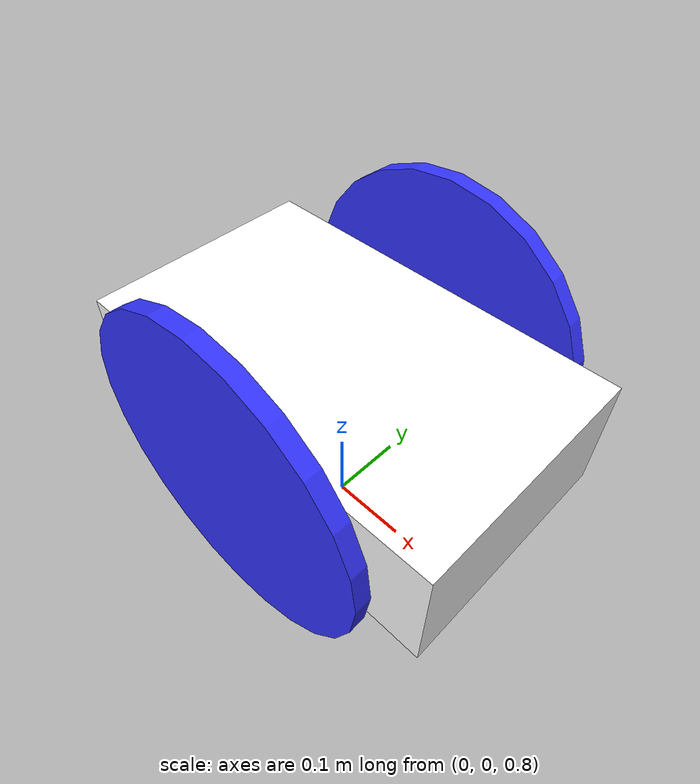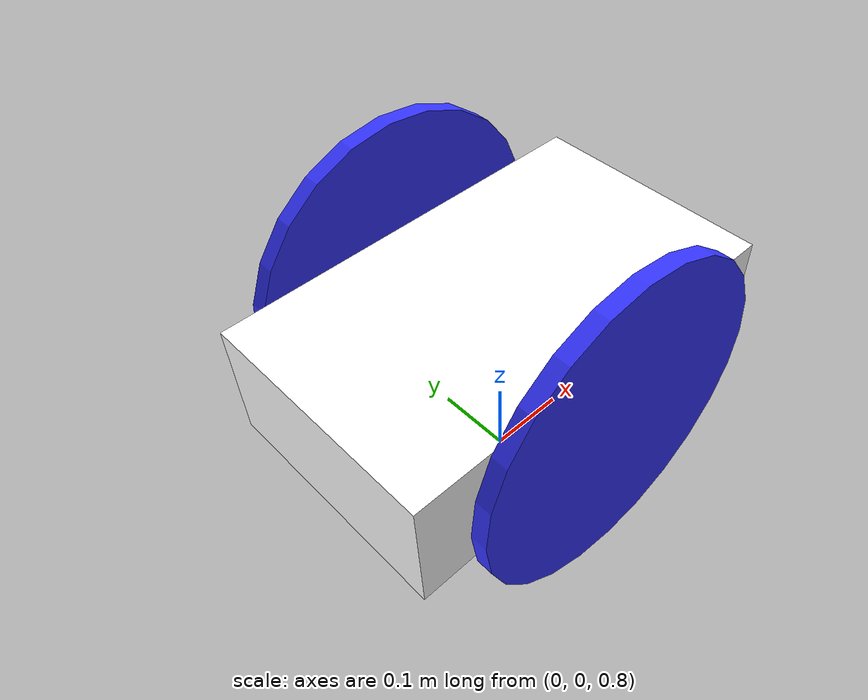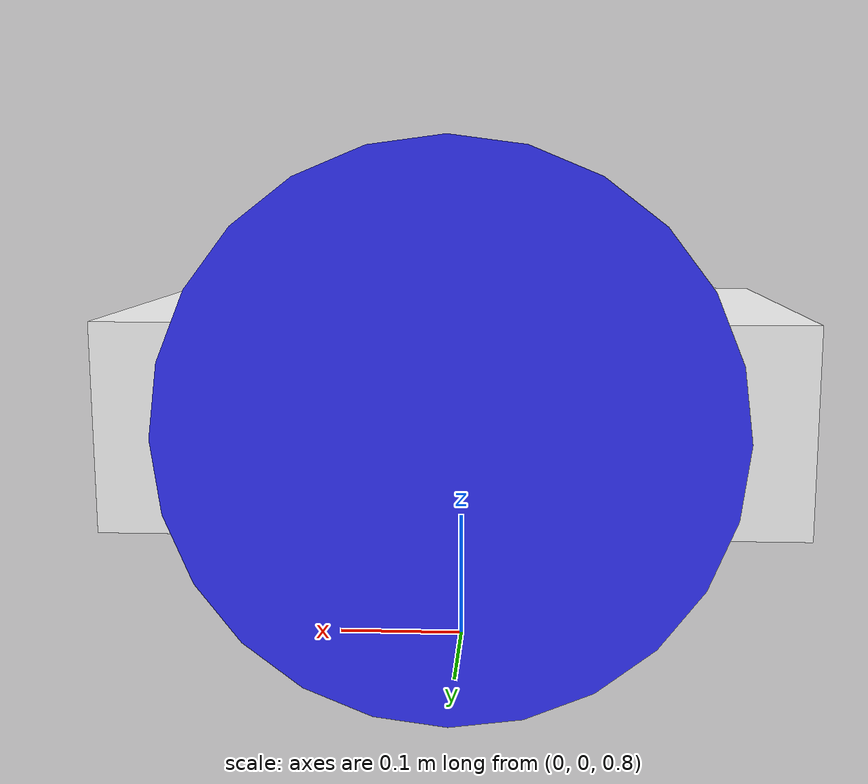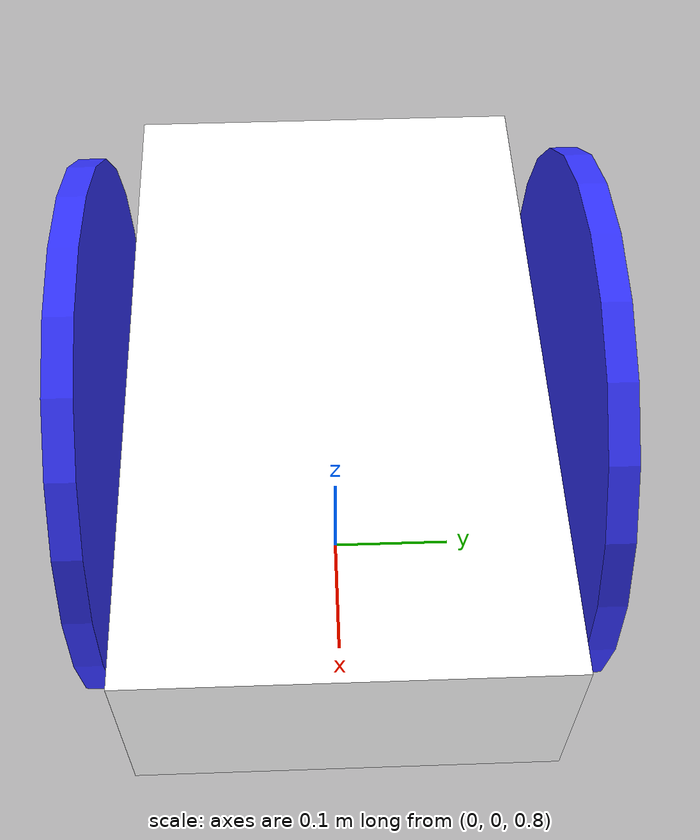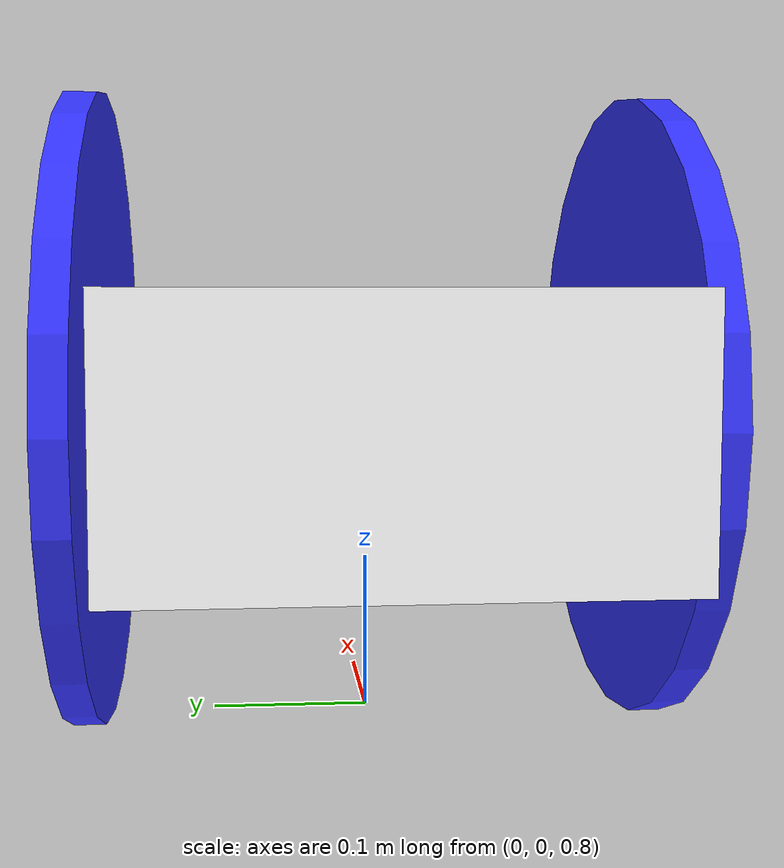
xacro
<?xml version="1.0"?>
<robot xmlns:xacro="http://www.ros.org/wiki/xacro">

    <xacro:include filename="inertial_macros.xacro" />

    <xacro:property name="wheel_radius" value="0.2" />
    <xacro:property name="wheel_offset_center" value="0" />
    <xacro:property name="wheel_thickness" value="0.02" />
    <xacro:property name="axle_radius" value="0.04" />

    <material name="white">
        <color rgba="1 1 1 1" />
    </material>

    <material name="orange">
        <color rgba="1 0.3 0.1 1" />
    </material>

    <material name="blue">
        <color rgba="0.2 0.2 1 1" />
    </material>

    <material name="black">
        <color rgba="0 0 0 1" />
    </material>

    <!-- BASE LINK -->

    <link name="base_link">
    </link>

    <joint name="chassis_joint" type="fixed">
        <parent link="base_link" />
        <child link="chassis" />
        <origin xyz="0 0 1" />
    </joint>

    <link name="chassis">
        <visual>
            <origin xyz="0 0 0" />
            <geometry>
                <box size="0.5 0.3 0.15" />
            </geometry>
            <material name="white" />
        </visual>
        <collision>
            <origin xyz="0 0 0" />
            <geometry>
                <box size="0.5 0.3 0.15" />
            </geometry>
        </collision>
        <xacro:inertial_box mass="3" x="0.5" y="0.3" z="0.15">
            <origin xyz="0 0 0" rpy="0 0 0" />
        </xacro:inertial_box>
    </link>

    <gazebo
        reference="chassis">
        <material>Gazebo/White</material>
    </gazebo>

    <!-- LEFT AXLE -->
    <joint name="left_axle" type="continuous">
        <parent link="chassis" />
        <child link="Laxle" />
        <origin xyz="-${wheel_offset_center} 0.15 0" rpy="-${pi/2} 0 0" />
        <axis xyz="0 0 1" />
    </joint>

    <link name="Laxle">
        <visual>
            <geometry>
                <cylinder radius="${axle_radius}" length="0.01" />
            </geometry>
            <material name="orange" />
        </visual>
        <xacro:inertial_cylinder mass="0.1" length="0.01" radius="${axle_radius}">
            <origin xyz="0 0 0" rpy="0 0 0" />
        </xacro:inertial_cylinder>
    </link>

    <gazebo
        reference="Laxle">
        <material>Gazebo/Orange</material>
    </gazebo>
    <!-- LEFT WHEEL LINK -->

    <joint name="left_wheel_joint" type="continuous">
        <parent link="chassis" />
        <child link="left_wheel" />
        <origin xyz="-${wheel_offset_center} 0.175 0" rpy="-${pi/2} 0 0" />
        <axis xyz="0 0 1" />
    </joint>

    <link name="left_wheel">
        <visual>
            <geometry>
                <cylinder radius="${wheel_radius}" length="${wheel_thickness}" />
            </geometry>
            <material name="blue" />
        </visual>
        <collision>
            <geometry>
                <cylinder radius="${wheel_radius}" length="${wheel_thickness}" />
            </geometry>
        </collision>
        <xacro:inertial_cylinder mass="0.1" length="${wheel_thickness}" radius="${wheel_radius}">
            <origin xyz="0 0 0" rpy="0 0 0" />
        </xacro:inertial_cylinder>
    </link>

    <gazebo
        reference="left_wheel">
        <material>Gazebo/Blue</material>

    </gazebo>

    <!-- RIGHT AXLE -->
    <joint name="right_axle" type="continuous">
        <parent link="chassis" />
        <child link="Raxle" />
        <origin xyz="-${wheel_offset_center} -0.15 0" rpy="-${pi/2} 0 0" />
        <axis xyz="0 0 -1" />
    </joint>

    <link name="Raxle">
        <visual>
            <geometry>
                <cylinder radius="${axle_radius}" length="0.01" />
            </geometry>
            <material name="orange" />
        </visual>
        <xacro:inertial_cylinder mass="0.1" length="0.01" radius="${axle_radius}">
            <origin xyz="0 0 0" rpy="0 0 0" />
        </xacro:inertial_cylinder>
    </link>

    <gazebo
        reference="Raxle">
        <material>Gazebo/Orange</material>
    </gazebo>
    <!-- RIGHT WHEEL LINK -->

    <joint name="right_wheel_joint"
        type="continuous">
        <parent link="chassis" />
        <child link="right_wheel" />
        <origin xyz="-${wheel_offset_center} -0.175 0" rpy="-${pi/2} 0 0" />
        <axis xyz="0 0 -1" />
    </joint>

    <link name="right_wheel">
        <visual>
            <geometry>
                <cylinder radius="${wheel_radius}" length="${wheel_thickness}" />
            </geometry>
            <material name="blue" />
        </visual>
        <collision>
            <geometry>
                <cylinder radius="${wheel_radius}" length="${wheel_thickness}" />
            </geometry>
        </collision>
        <xacro:inertial_cylinder mass="0.1" length="${wheel_thickness}" radius="${wheel_radius}">
            <origin xyz="0 0 0" rpy="0 0 0" />
        </xacro:inertial_cylinder>
    </link>

    <gazebo
        reference="right_wheel">
        <material>Gazebo/Blue</material>
    </gazebo>

</robot>

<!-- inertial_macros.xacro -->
<robot xmlns:xacro="http://www.ros.org/wiki/xacro" >

    <!-- Specify some standard inertial calculations https://en.wikipedia.org/wiki/List_of_moments_of_inertia -->
    <!-- These make use of xacro's mathematical functionality -->

    <xacro:macro name="inertial_box" params="mass x y z *origin">
        <inertial>
            <xacro:insert_block name="origin"/>
            <mass value="${mass}" />
            <inertia ixx="${(1/12) * mass * (y*y+z*z)}" ixy="0.0" ixz="0.0"
                    iyy="${(1/12) * mass * (x*x+z*z)}" iyz="0.0"
                    izz="${(1/12) * mass * (x*x+y*y)}" />
        </inertial>
    </xacro:macro>

    <xacro:macro name="inertial_cylinder" params="mass length radius *origin">
        <inertial>
            <xacro:insert_block name="origin"/>
            <mass value="${mass}" />
            <inertia ixx="${(1/12) * mass * (3*radius*radius + length*length)}" ixy="0.0" ixz="0.0"
                    iyy="${(1/12) * mass * (3*radius*radius + length*length)}" iyz="0.0"
                    izz="${(1/2) * mass * (radius*radius)}" />
        </inertial>
    </xacro:macro>

</robot>
